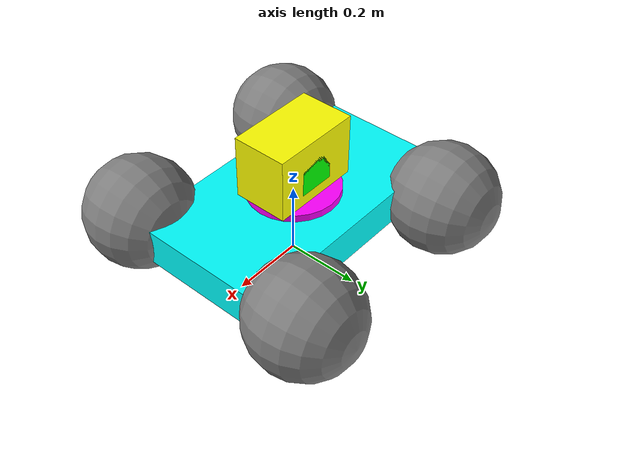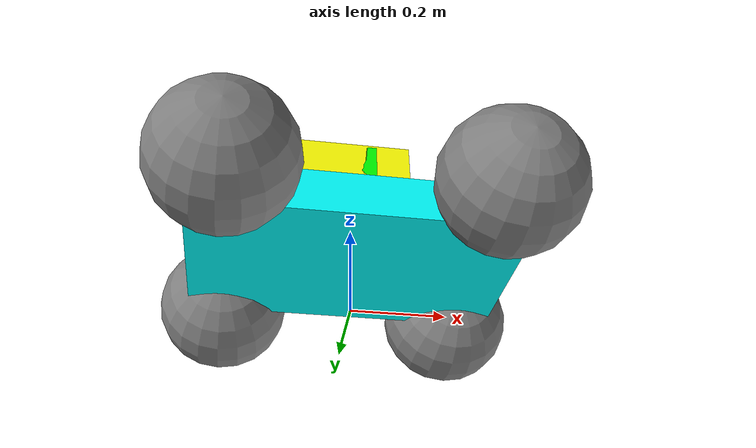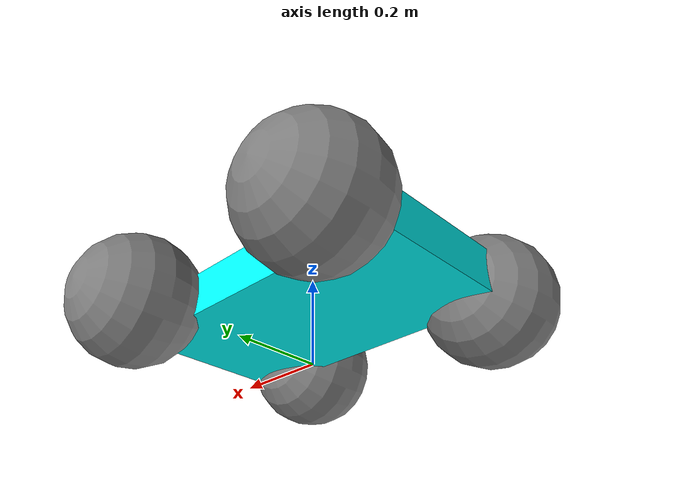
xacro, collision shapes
<?xml version="1.0"?>

<robot name="mecanum_gimbal_car"
       xmlns:xacro="http://www.ros.org/wiki/xacro"
       xmlns:gz="http://gazebosim.org/schema">

    <!-- INCLUDE FILES -->
    <xacro:include filename="materials.xacro"         />
    <xacro:include filename="common_properties.xacro" />
    <xacro:include filename="mecanum_base.xacro"      />
    <xacro:include filename="gimbal.xacro"            />
    <xacro:include filename="camera.xacro"            />
    <xacro:include filename="mecanum_base_gz.xacro"   />
    <xacro:include filename="gz_control.xacro"        />

</robot>

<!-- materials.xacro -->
<robot xmlns:xacro="http://www.ros.org/wiki/xacro">

    <!-- COLORS -->
    <material name="red">
        <color rgba="1.0 0.0 0.0 1" />
    </material>

    <material name="green">
        <color rgba="0.0 1.0 0.0 1" />
    </material>

    <material name="blue">
        <color rgba="0.0 0.0 1.0 1" />
    </material>

    <material name="cyan">
        <color rgba="0.0 1.0 1.0 1" />
    </material>

    <material name="magenta">
        <color rgba="1.0 0.0 1.0 1" />
    </material>

    <material name="yellow">
        <color rgba="1.0 1.0 0.0 1" />
    </material>

    <material name="gray">
        <color rgba="0.5 0.5 0.5 1" />
    </material>

    <material name="black">
        <color rgba="0.0 0.0 0.0 1" />
    </material>

</robot>

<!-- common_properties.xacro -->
<robot xmlns:xacro="http://www.ros.org/wiki/xacro">

    <!-- FUNCTIONS/MACROS -->
     <xacro:macro name="box_inertia" params="m x y z o_xyz o_rpy">
        <inertial>
            <mass value = "${m}" />
            <origin xyz = "${o_xyz}" rpy = "${o_rpy}" />
            <inertia ixx = "${(m/12.0) * ((y*y) + (z*z))}" ixy = "0.0" ixz = "0.0"
                     iyy = "${(m/12.0) * ((x*x) + (z*z))}" iyz = "0.0"
                     izz = "${(m/12.0) * ((y*y) + (x*x))}" />
        </inertial>
     </xacro:macro>

    <xacro:macro name="cylinder_inertia" params="m r h o_xyz o_rpy">
        <inertial>
            <mass value = "${m}" />
            <origin xyz = "${o_xyz}" rpy = "${o_rpy}" />
            <inertia ixx = "${(m/12.0) * ((3*r*r) + (h*h))}" ixy = "0.0" ixz = "0.0"
                     iyy = "${(m/12.0) * ((3*r*r) + (h*h))}" iyz = "0.0"
                     izz = "${((m*r*r)/2.0)}" />
        </inertial>
     </xacro:macro>

    <xacro:macro name="sphere_inertia" params="m r o_xyz o_rpy">
        <inertial>
            <mass value = "${m}" />
            <origin xyz = "${o_xyz}" rpy = "${o_rpy}" />
            <inertia ixx = "${(2.0/5.0)*(m*r*r)}" ixy = "0.0" ixz = "0.0"
                     iyy = "${(2.0/5.0)*(m*r*r)}" iyz = "0.0"
                     izz = "${(2.0/5.0)*(m*r*r)}" />
        </inertial>
     </xacro:macro>

</robot>

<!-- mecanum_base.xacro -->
<robot xmlns:xacro="http://www.ros.org/wiki/xacro"
       xmlns:gz="http://gazebosim.org/schema">

    <!-- VARIABLES -->
    <xacro:property name="chassis_length" value="0.7"  />
    <xacro:property name="chassis_width"  value="0.4"  />
    <xacro:property name="chassis_height" value="0.1"  />
    <xacro:property name="wheel_radius"   value="0.15" />
    <xacro:property name="wheel_width"    value="0.12" />
    <xacro:property name="wheel_base"     value="0.55"  />   <!-- front-to-rear wheel center distance -->
    <xacro:property name="track_width"    value="0.55"  />   <!-- left-to-right wheel center distance -->

    <!-- FUNCTIONS/MACROS -->
    <xacro:macro name="wheel" params="name_prefix mesh_url">
        <link name="${name_prefix}_wheel">

            <xacro:cylinder_inertia m="1.0" r="${wheel_radius}" h="${wheel_width}"
                                    o_xyz="0.0 0.0 0.0" o_rpy="${pi/2.0} 0.0 0.0" />

            <visual>
                <origin xyz="0.0 0.0 0.0" rpy="0.0 0.0 0.0" />
                <geometry>
                    <mesh filename="${mesh_url}"
                          scale="0.003 0.003 0.003" />
                </geometry>
                <material name="gray" />
            </visual>

            <collision>
                <origin xyz="0.0 0.0 0.0" rpy="${pi/2.0} 0.0 0.0" />
                <geometry>
                  <sphere radius="${wheel_radius}" />
                </geometry>
            </collision>

        </link>
    </xacro:macro>

    <!-- LINKS -->
    <link name="base_link">
    </link>

    <link name="chassis">

        <xacro:box_inertia m="3.0" x="${chassis_length}" y="${chassis_width}" z="${chassis_height}"
                           o_xyz="0.0 0.0 0.0" o_rpy="0.0 0.0 0.0" />

        <visual>
            <origin xyz="0.0 0.0 0.0" rpy="0.0 0.0 0.0" />
            <geometry>

                <box size="${chassis_length} ${chassis_width} ${chassis_height}" />
            </geometry>
            <material name="cyan" />
        </visual>

        <collision>
            <origin xyz="0.0 0.0 0.0" rpy="0.0 0.0 0.0" />
            <geometry>
                <box size="${chassis_length} ${chassis_width} ${chassis_height}" />
            </geometry>
        </collision>

    </link>

    <xacro:wheel name_prefix="front_left" mesh_url="package://mgc_description/meshes/MecanumWheel_FL.stl" />
    <xacro:wheel name_prefix="front_right" mesh_url="package://mgc_description/meshes/MecanumWheel_FR.stl"/>
    <xacro:wheel name_prefix="rear_left" mesh_url="package://mgc_description/meshes/MecanumWheel_RL.stl"/>
    <xacro:wheel name_prefix="rear_right" mesh_url="package://mgc_description/meshes/MecanumWheel_RR.stl"/>

    <!-- JOINTS -->
    <joint name="base_link_TO_chassis" type="fixed">
        <parent link="base_link" />
        <child link="chassis" />
        <origin xyz="0.0 0.0 ${wheel_radius}" rpy= "0.0 0.0 0.0" />
    </joint>

    <joint name="chassis_TO_front_left_wheel" type="continuous">
        <parent link="chassis" />
        <child link="front_left_wheel" />
        <origin xyz="${(wheel_base/2.0)} ${(track_width/2.0)} 0.0" rpy="0.0 0.0 0.0" />
        <axis xyz = "0 1 0" />
    </joint>

    <joint name="chassis_TO_front_right_wheel" type="continuous">
        <parent link="chassis" />
        <child link="front_right_wheel" />
        <origin xyz="${(wheel_base/2.0)} -${(track_width/2.0)} 0.0" rpy="0.0 0.0 0.0" />
        <axis xyz = "0 1 0" />
    </joint>

    <joint name="chassis_TO_rear_left_wheel" type="continuous">
        <parent link="chassis" />
        <child link="rear_left_wheel" />
        <origin xyz="-${(wheel_base/2.0)} ${(track_width/2.0)} 0.0" rpy="0.0 0.0 0.0" />
        <axis xyz = "0 1 0" />
    </joint>

    <joint name="chassis_TO_rear_right_wheel" type="continuous">
        <parent link="chassis" />
        <child link="rear_right_wheel" />
        <origin xyz="-${(wheel_base/2.0)} -${(track_width/2.0)} 0.0" rpy="0.0 0.0 0.0" />
        <axis xyz = "0 1 0" />
    </joint>

</robot>

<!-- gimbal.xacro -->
<robot xmlns:xacro="http://www.ros.org/wiki/xacro">

    <!-- VARIABLES -->
    <xacro:property name="gimbal_base_radius" value="0.125" />
    <xacro:property name="gimbal_base_height" value="0.02"  />

    <!-- LINKS -->
    <link name="gimbal_base">

        <xacro:cylinder_inertia m="1.00138" r="${gimbal_base_radius}" h="${gimbal_base_height}"
                                o_xyz="0.0 0.0 ${gimbal_base_height/2.0}" o_rpy="0.0 0.0 0.0" />

        <visual>
            <origin xyz="0.0 0.0 ${gimbal_base_height/2.0}" rpy="0.0 0.0 0.0" />
            <geometry>
                <cylinder radius="${gimbal_base_radius}" length="${gimbal_base_height}" />
            </geometry>
            <material name="magenta" />
        </visual>

        <collision>
            <origin xyz="0.0 0.0 ${gimbal_base_height/2.0}" rpy="0.0 0.0 0.0" />
            <geometry>
                <cylinder radius="${gimbal_base_radius}" length="${gimbal_base_height}" />
            </geometry>
        </collision>

    </link>

    <link name="gimbal_yaw_link">

        <inertial>
            <mass value="1.56633" />
            <origin xyz="0.0 0.0 0.05367" rpy="0.0 0.0 0.0" />
            <inertia ixx = "0.00670726757" ixy = "0.0" ixz = "0.0"
                     iyy = "0.01423644602" iyz = "0.0"
                     izz = "0.01291464056" />
        </inertial>

        <visual>
            <origin xyz="0.0 0.0 0.0" rpy="0.0 0.0 0.0" />
            <geometry>
                <mesh filename="package://mgc_description/meshes/GimbalYawLink.stl"
                      scale="0.001 0.001 0.001" />
            </geometry>
            <material name="yellow" />
        </visual>

        <collision>
            <origin xyz="0.0 0.0 0.0875" rpy="0.0 0.0 0.0" />
            <geometry>
                <box size="0.250 0.150 0.175" />
            </geometry>
        </collision>

    </link>

    <link name="gimbal_pitch_link">

        <inertial>
            <mass value="1.94247" />
            <origin xyz="0.0 0.0 0.0" rpy="0.0 0.0 0.0" />
            <inertia ixx = "0.00632147743" ixy = "0.0" ixz = "0.0"
                     iyy = "0.00415941869" iyz = "0.0"
                     izz = "0.00512220725" />
        </inertial>

        <visual>
            <origin xyz="0.0 0.0 0.0" rpy="0.0 0.0 0.0" />
            <geometry>
                <mesh filename="package://mgc_description/meshes/GimbalPitchLink.stl"
                      scale="0.001 0.001 0.001" />
            </geometry>
            <material name="green" />
        </visual>

        <collision>
            <origin xyz="0.0 0.0 0.0" rpy="0.0 0.0 0.0" />
            <geometry>
                <box size="0.100 0.150 0.140" />
            </geometry>
        </collision>

    </link>

    <!-- JOINTS -->
    <joint name="chassis_TO_gimbal_base" type="fixed">
        <parent link="chassis" />
        <child link="gimbal_base" />
        <origin xyz="0.0 0.0 ${chassis_height/2.0}" rpy= "0.0 0.0 0.0" />
    </joint>

    <joint name="gimbal_base_TO_gimbal_yaw_link" type="revolute">
        <parent link="gimbal_base" />
        <child link="gimbal_yaw_link" />
        <origin xyz="0.0 0.0 ${gimbal_base_height}" rpy="0.0 0.0 0.0" />
        <axis xyz = "0 0 1" />
        <limit lower="-${pi}" upper="${pi}" effort="10.0" velocity="2.0"/>
    </joint>

    <joint name="gimbal_yaw_link_TO_gimbal_pitch_link" type="revolute">
        <parent link="gimbal_yaw_link" />
        <child link="gimbal_pitch_link" />
        <origin xyz="0.0 0.0 0.1" rpy="0.0 0.0 0.0" />
        <axis xyz = "0 1 0" />
        <limit lower="${-pi/2.0}" upper="${pi/2.0}" effort="10.0" velocity="2.0"/>
    </joint>

</robot>

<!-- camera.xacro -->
<robot xmlns:xacro="http://www.ros.org/wiki/xacro">

    <!-- VARIABLES -->
    <xacro:property name="camera_length" value="0.01" />
    <xacro:property name="camera_width" value="0.05" />
    <xacro:property name="camera_height" value="0.05" />

    <!-- LINKS -->
    <link name="camera_holder">

        <xacro:box_inertia m="0.2" x="${camera_length}" y="${camera_width}" z="${camera_height}"
                           o_xyz="0.0 0.0 0.0" o_rpy="0.0 0.0 0.0" />

        <visual>
            <origin xyz="0.0 0.0 0.0" rpy="0.0 0.0 0.0" />
            <geometry>
                <box size="${camera_length} ${camera_width} ${camera_height}" />
            </geometry>
            <material name="blue" />
        </visual>

        <collision>
            <origin xyz="0.0 0.0 0.0" rpy="0.0 0.0 0.0" />
            <geometry>
                <box size="${camera_length} ${camera_width} ${camera_height}" />
            </geometry>
        </collision>

    </link>

    <!-- JOINTS -->
    <joint name="gimbal_pitch_link_TO_camera_holder" type="fixed">
        <parent link="gimbal_pitch_link" />
        <child link="camera_holder" />
        <origin xyz="${(0.05 + (camera_length)/2.0)} 0.0 0.0" rpy= "0.0 0.0 0.0" />
    </joint>

    <!-- GAZEBO PROPERTY -->
     <gazebo reference="camera_holder">
        <sensor name="camera" type="camera">
            <camera>
                <horizontal_fov>1.3962634</horizontal_fov>
                <image>
                    <width>640</width>
                    <height>480</height>
                    <format>R8G8B8</format>
                </image>
                <clip>
                    <near>0.1</near>
                    <far>15</far>
                </clip>
                <noise>
                    <type>gaussian</type>
                    <mean>0.0</mean>
                    <stddev>0.007</stddev>
                </noise>
                <optical_frame_id>camera_holder</optical_frame_id>
                <camera_info_topic>camera/camera_info</camera_info_topic>
            </camera>
            <always_on>1</always_on>
            <update_rate>20</update_rate>
            <visualize>true</visualize>
            <topic>camera/image_raw</topic>
        </sensor>
     </gazebo>
</robot>
